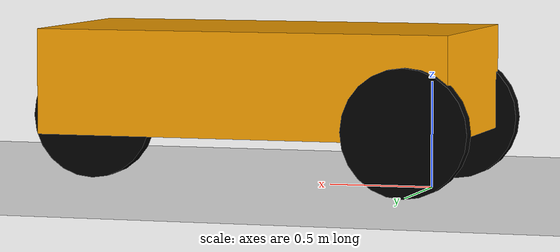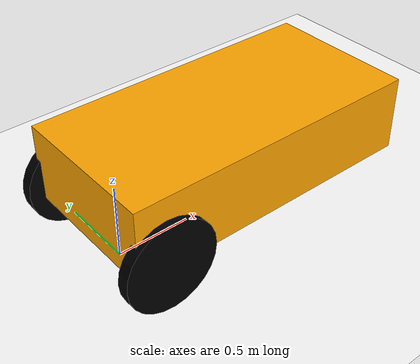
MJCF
<mujoco>
    <compiler angle="radian" />
	<option gravity="0 0 -9.81">
		<flag contact="enable" />
	</option>
	<worldbody>
        <light diffuse=".5 .5 .5" pos="0 0 5" dir="0 0 -1" />
		<geom type="plane" size="20 20 0.1" rgba="1 1 1 1" />

        <body name="chassis" pos="0.8 0 0.5" euler="0 0 0">
            <joint type="free" />
            <geom type="box" size="1 0.5 0.25" rgba="1 0.65 0 1" />
            <inertial pos="0 0 0" mass="1" diaginertia="0.126164 0.416519 0.481014" />
            <body name="left_wheel" pos="-0.8 0.5 -0.2" euler="-1.57 0 0">
                <joint name="left_wheel_joint" type="hinge" axis="0 0 1" pos="0 0 0" damping="0.2" />
                <geom type="cylinder" size="0.3 0.04" rgba="0 0 0 1" />
                <inertial pos="0 0 0" mass="2" diaginertia="0.145833 0.145833 0.125" />
            </body>
            <body name="right_wheel" pos="-0.8 -0.5 -0.2" euler="-1.5707 0 0">
                <joint name="right_wheel_joint" type="hinge" axis="0 0 1" pos="0 0 0" damping="0.2" />
                <geom type="cylinder" size="0.3 0.04" rgba="0 0 0 1" />
                <inertial pos="0 0 0" mass="2" diaginertia="0.145833 0.145833 0.125" />
            </body>
            <body name="steering_link" pos="0.9 0 -0.2" euler="0 0 0">
                <joint name="steering_joint" type="hinge" axis="0 0 1" pos="0 0 0" />
                <geom type="box" size="0.005 0.005 0.005" rgba="0 0 0 1" />
                <inertial pos="0 0 0" mass="0.005" diaginertia="0.1 0.1 0.1" />
                <body name="wheel_front_link" pos="0 0 0" euler="-1.57 0 0">
                    <joint name="traction_joint" type="hinge" axis="0 0 1" pos="0 0 0" />
                    <geom type="cylinder" size="0.3 0.04" rgba="0 0 0 1" />
                    <inertial pos="0 0 0" mass="15" diaginertia="1 1 1" />
                </body>
            </body>
        </body>
	</worldbody>
    <actuator>
        <!-- Steering position actuator -->
        <position name="act_pos_steering_joint" joint="steering_joint"
                  kp="100.0" kv="0.0"
                  ctrlrange="-1.57 1.57" forcerange="-100 100"/>

        <!-- Traction wheel velocity actuator -->
        <velocity name="act_vel_traction_joint" joint="traction_joint"
                  kv="10.0"
                  ctrlrange="-50 50" forcerange="-100 100"/>
    </actuator>
    <contact>
        <exclude body1="chassis" body2="left_wheel" />
        <exclude body1="chassis" body2="right_wheel" />
        <exclude body1="chassis" body2="steering_link" />
        <exclude body1="chassis" body2="wheel_front_link" />
        <exclude body1="steering_link" body2="wheel_front_link" />
    </contact>
</mujoco>
